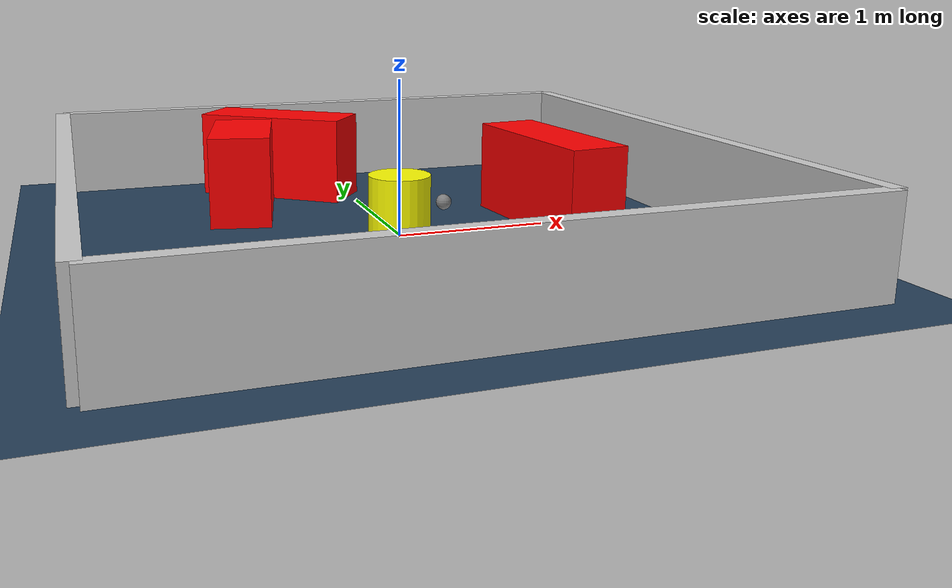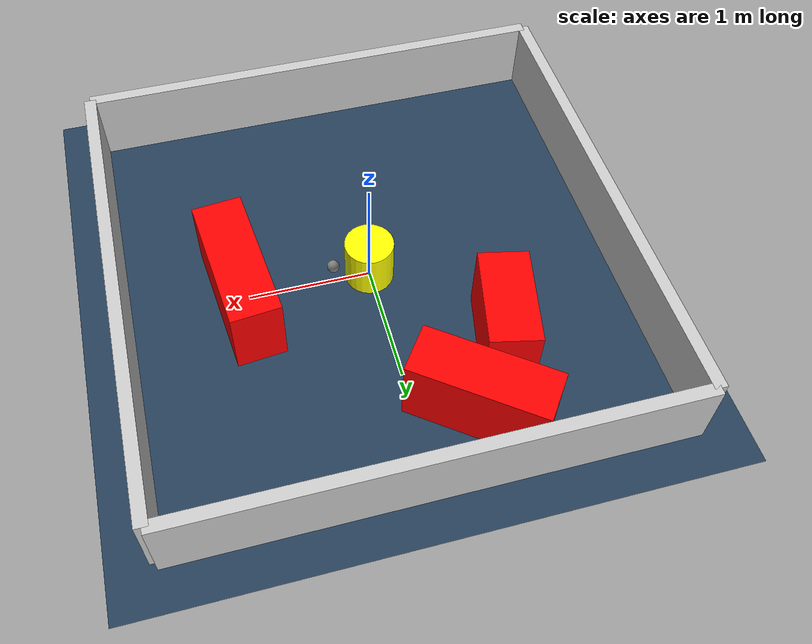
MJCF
<?xml version="1.0" ?>
<mujoco model="generated_environment">
  <option timestep="0.01" integrator="RK4" cone="elliptic"/>
  <default>
    <geom density="1"/>
  </default>
  <asset>
    <texture builtin="gradient" height="3072" rgb1="0.3 0.5 0.7" rgb2="0 0 0" type="skybox" width="512"/>
    <texture builtin="checker" height="300" mark="edge" markrgb="0.8 0.8 0.8" name="groundplane" rgb1="0.2 0.3 0.4" rgb2="0.1 0.2 0.3" type="2d" width="300"/>
    <material name="groundplane" reflectance="0.2" texrepeat="5 5" texture="groundplane" texuniform="true"/>
    <material name="robot" rgba="0.0 1.0 0.0 1"/>
  </asset>
  <worldbody>
    <light dir="0 0 -1" directional="true" pos="0 0 1.5"/>
    <geom condim="4" friction="1.0 0.005 0.001" material="groundplane" name="floor" size="0 0 0.05" type="plane"/>
    <body name="walls">
      <geom name="wall_1" condim="4" pos="-2.0 0.0 0.3" rgba="0.800000011920929 0.800000011920929 0.800000011920929 1.0" size="0.05 2.0 0.3" type="box"/>
      <geom name="wall_2" condim="4" pos="2.0 0.0 0.3" rgba="0.800000011920929 0.800000011920929 0.800000011920929 1.0" size="0.05 2.0 0.3" type="box"/>
      <geom name="wall_3" condim="4" pos="0.0 -2.0 0.3" rgba="0.800000011920929 0.800000011920929 0.800000011920929 1.0" size="2.0 0.05 0.3" type="box"/>
      <geom name="wall_4" condim="4" pos="0.0 2.0 0.3" rgba="0.800000011920929 0.800000011920929 0.800000011920929 1.0" size="2.0 0.05 0.3" type="box"/>
    </body>
    <body name="robot">
      <joint name="joint_x" type="slide" pos="0 0 0" axis="1 0 0"/>
      <joint name="joint_y" type="slide" pos="0 0 0" axis="0 1 0"/>
      <geom name="robot" type="sphere" pos="0.3 0.0 0.2" size="0.05" mass="5." friction="1.0 0.005 0.0001" condim="4" rgba="0.5 0.5 0.5 1.0"/>
      <site name="sensor_ball"/>
    </body>
    <body name="obstacle_movable_1">
      <geom name="obstacle_movable_1" condim="4" pos="0.0 0.0 0.2" euler="0 0 0.0" friction="1.0 0.005 0.001" rgba="1.0 1.0 0.0 1.0" size="0.2 0.2 0.0" type="cylinder" mass="0.1"/>
      <joint type="free"/>
    </body>
    <body name="obstacle_2_static">
      <geom name="obstacle_2_static" condim="4" pos="-0.847060466044681 0.8881453413602316 0.3" euler="0 0 257.72284937518566" friction="1.0 0.005 0.001" rgba="1 0 0 1" size="0.40589799895702017 0.2 0.3" type="box"/>
    </body>
    <body name="obstacle_3_static">
      <geom name="obstacle_3_static" condim="4" pos="1.0629424769988733 0.020901295405381992 0.3" euler="0 0 275.7453773908643" friction="1.0 0.005 0.001" rgba="1 0 0 1" size="0.5738221481278584 0.2 0.3" type="box"/>
    </body>
    <body name="obstacle_4_static">
      <geom name="obstacle_4_static" condim="4" pos="-0.4632762427227288 1.4651371449773414 0.3" euler="0 0 143.23983867177344" friction="1.0 0.005 0.001" rgba="1 0 0 1" size="0.5396664296715742 0.2 0.3" type="box"/>
    </body>
  </worldbody>
  <actuator>
    <motor name="actuator_x" joint="joint_x" gear="1" ctrlrange="-1 1"/>
    <motor name="actuator_y" joint="joint_y" gear="1" ctrlrange="-1 1"/>
  </actuator>
</mujoco>
